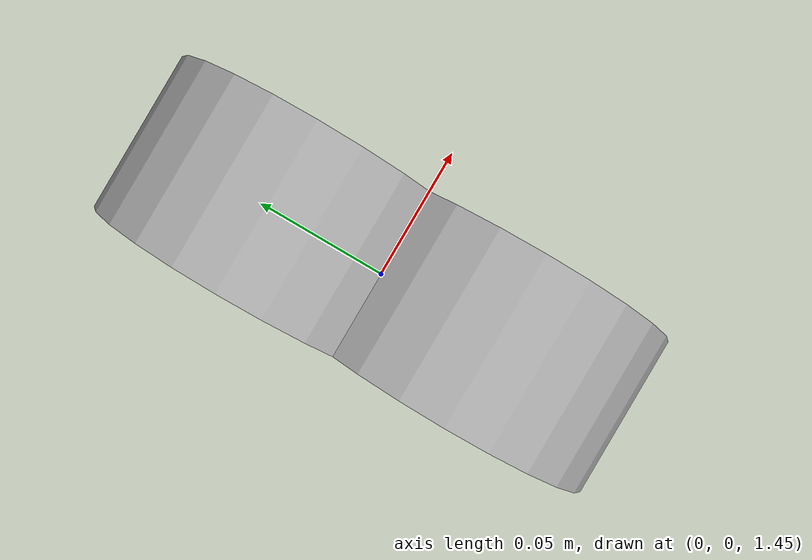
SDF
<?xml version="1.0" ?>
<sdf version="1.5">
  <model name="dual_cameras">
    <pose>0 0 0 0 0 0</pose>

    <link name="left_eye">
      <pose>0 0.0328 1.5 0 0 0</pose>
      <inertial>
        <mass>0</mass>
      </inertial>

    <visual name="visual">
      <pose>0 0 0 0 1.57075 0</pose>
        <geometry>
          <cylinder>
            <radius>0.05</radius>
            <length>0.05</length>
          </cylinder>
        </geometry>
      </visual>

      <sensor name="camera" type="wideanglecamera">
        <camera>
          <horizontal_fov>1.347</horizontal_fov>
          <image>
            <width>960</width>
            <height>1200</height>
          </image>
          <clip>
            <near>0.1</near>
            <far>100</far>
          </clip>
          <lens>
            <type>custom</type>
		<custom_function>
		  <c1>1.05</c1>
		  <c2>4</c2>
		  <f>1.0</f>
		  <fun>tan</fun>
		</custom_function>

            <scale_to_hfov>true</scale_to_hfov>
            <cutoff_angle>1.5707</cutoff_angle>
            <env_texture_size>1024</env_texture_size>

          </lens>
        </camera>

         <plugin name="gazebo_ros_camera" filename="libgazebo_ros_camera.so">
         <cameraName>camera</cameraName>
         <alwaysOn>true</alwaysOn>
         <updateRate>0</updateRate>
         <imageTopicName>rgb/left_eye</imageTopicName>
         <cameraInfoTopicName>rgb/left_info</cameraInfoTopicName>
         <frameName>camera_frame</frameName>
         <baseline>0.1</baseline>
         <distortion_k1>0.0</distortion_k1>
         <distortion_k2>0.0</distortion_k2>
         <distortion_k3>0.0</distortion_k3>
         <distortion_t1>0.0</distortion_t1>
         <distortion_t2>0.0</distortion_t2>
         </plugin>
        <always_on>1</always_on>
        <update_rate>100</update_rate>
      </sensor>
    </link>

    <link name="right_eye">
      <pose>0 -0.0328 1.5 0 0 0</pose>
      <inertial>
        <mass>0</mass>
      </inertial>

    <visual name="visual">
      <pose>0 0 0 0 1.57075 0</pose>
        <geometry>
          <cylinder>
            <radius>0.05</radius>
            <length>0.05</length>
          </cylinder>
        </geometry>
      </visual>

      <sensor name="camera" type="wideanglecamera">
        <camera>
          <horizontal_fov>1.347</horizontal_fov>
          <image>
            <width>960</width>
            <height>1200</height>
          </image>
          <clip>
            <near>0.1</near>
            <far>100</far>
          </clip>
          <lens>
            <type>custom</type>
		<custom_function>
		  <c1>1.05</c1>
		  <c2>4</c2>
		  <f>1.0</f>
		  <fun>tan</fun>
		</custom_function>

            <scale_to_hfov>true</scale_to_hfov>
            <cutoff_angle>1.5707</cutoff_angle>
            <env_texture_size>1024</env_texture_size>

          </lens>
        </camera>

         <plugin name="gazebo_ros_camera" filename="libgazebo_ros_camera.so">
         <cameraName>camera</cameraName>
         <alwaysOn>true</alwaysOn>
         <updateRate>0</updateRate>
         <imageTopicName>rgb/right_eye</imageTopicName>
         <cameraInfoTopicName>rgb/right_info</cameraInfoTopicName>
         <frameName>camera_frame</frameName>
         <baseline>0.1</baseline>
         <distortion_k1>0.0</distortion_k1>
         <distortion_k2>0.0</distortion_k2>
         <distortion_k3>0.0</distortion_k3>
         <distortion_t1>0.0</distortion_t1>
         <distortion_t2>0.0</distortion_t2>
         </plugin>
        <always_on>1</always_on>
        <update_rate>100</update_rate>
      </sensor>
    </link>

  </model>
</sdf>
